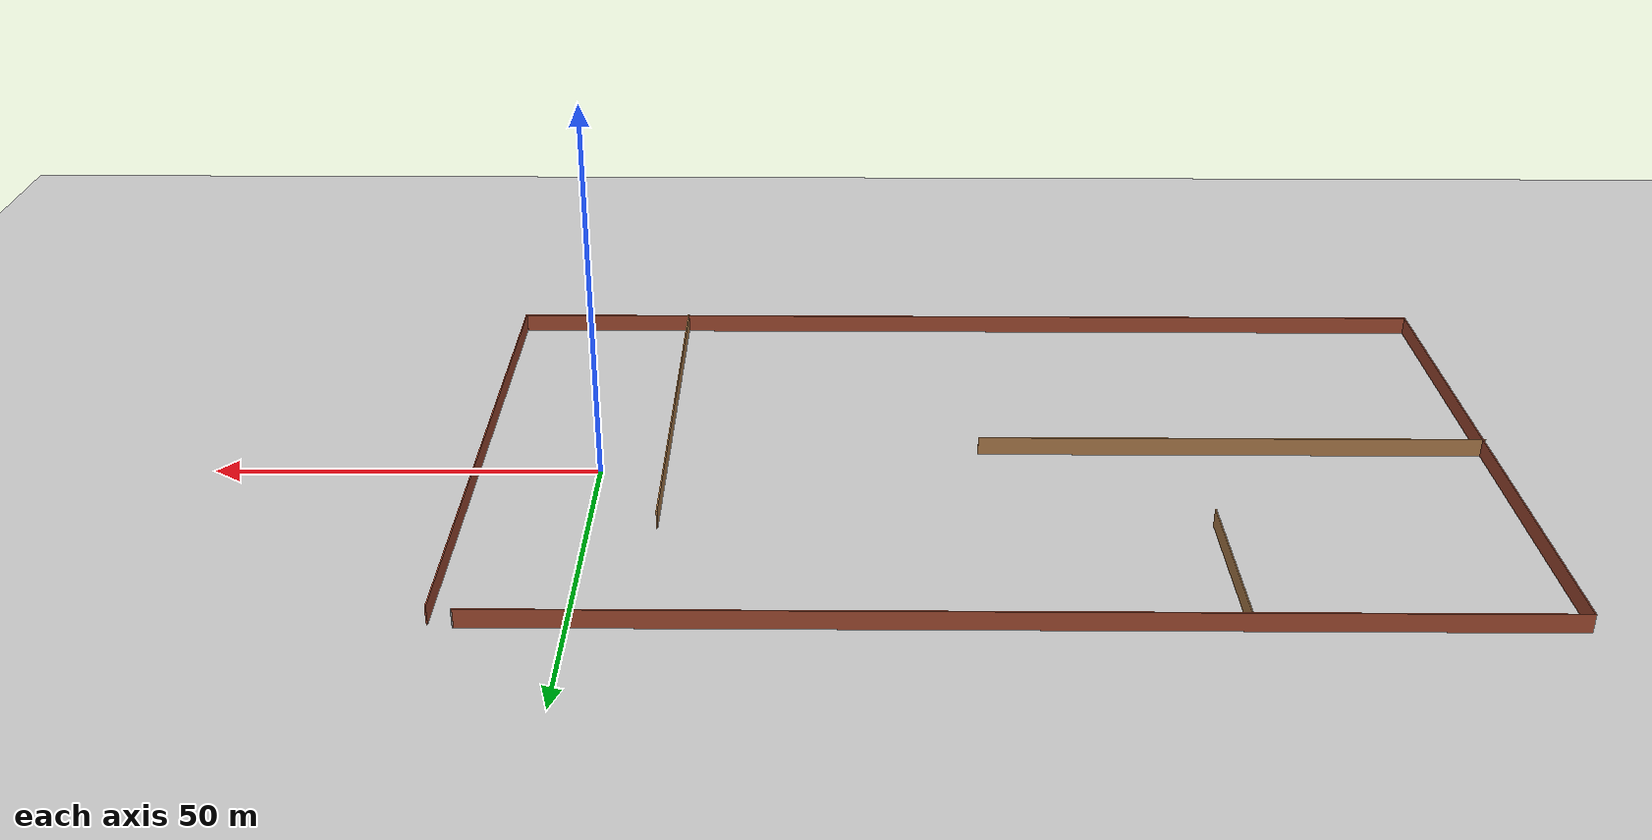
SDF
<sdf version="1.6">
 <world name="default">
  <light name="sun" type="directional">
   <pose>0 0 10 0 -0 0</pose>
   <diffuse>0.8 0.8 0.8 1</diffuse>
   <specular>0.2 0.2 0.2 1</specular>
   <attenuation>
    <range>1000</range>
    <constant>0.9</constant>
    <linear>0.01</linear>
    <quadratic>0.001</quadratic>
   </attenuation>
   <direction>-0.5 0.1 -0.9</direction>
  </light>
  <model name="ground_plane">
   <static>1</static>
   <link name="link">
    <collision name="collision">
     <geometry><plane><normal>0 0 1</normal><size>100 100</size></plane></geometry>
     <surface>
      <contact><collide_bitmask>65535</collide_bitmask></contact>
      <friction><ode><mu>100</mu><mu2>50</mu2></ode></friction>
     </surface>
    </collision>
    <visual name="visual">
     <cast_shadows>0</cast_shadows>
     <geometry><plane><normal>0 0 1</normal><size>100 100</size></plane></geometry>
     <material>
      <script><uri>file://media/materials/scripts/gazebo.material</uri><name>Gazebo/Grey</name></script>
     </material>
    </visual>
   </link>
  </model>
  <gravity>0 0 -9.8</gravity>
  <magnetic_field>6e-06 2.3e-05 -4.2e-05</magnetic_field>
  <atmosphere type="adiabatic"/>
  <physics name="default_physics" default="0" type="ode">
   <max_step_size>0.001</max_step_size>
   <real_time_factor>1</real_time_factor>
   <real_time_update_rate>1000</real_time_update_rate>
  </physics>
  <scene><ambient>0.4 0.4 0.4 1</ambient><background>0.7 0.7 0.7 1</background><shadows>1</shadows></scene>
  <audio><device>default</device></audio>
  <spherical_coordinates>
   <surface_model>EARTH_WGS84</surface_model>
   <latitude_deg>0</latitude_deg>
   <longitude_deg>0</longitude_deg>
   <elevation>0</elevation>
   <heading_deg>0</heading_deg>
  </spherical_coordinates>
  <model name="random">
   <pose>-50.1537 -4.10736 0 0 -0 0</pose>
   <link name="Wall_0">
    <collision name="Wall_0_Collision">
     <geometry><box><size>0.16 0.15 2.5</size></box></geometry>
     <pose>0 0 1.25 0 -0 0</pose>
    </collision>
    <visual name="Wall_0_Visual">
     <pose>0 0 1.25 0 -0 0</pose>
     <geometry><box><size>0.16 0.15 2.5</size></box></geometry>
     <material>
      <script><uri>file://media/materials/scripts/gazebo.material</uri><name>Gazebo/Grey</name></script>
      <ambient>1 1 1 1</ambient>
     </material>
     <meta><layer>0</layer></meta>
    </visual>
    <pose>62.9389 39.0951 0 0 -0 0</pose>
   </link>
   <link name="Wall_1">
    <collision name="Wall_1_Collision">
     <geometry><box><size>128.75 0.15 2.5</size></box></geometry>
     <pose>0 0 1.25 0 -0 0</pose>
    </collision>
    <visual name="Wall_1_Visual">
     <pose>0 0 1.25 0 -0 0</pose>
     <geometry><box><size>128.75 0.15 2.5</size></box></geometry>
     <material>
      <script><uri>file://media/materials/scripts/gazebo.material</uri><name>Gazebo/Bricks</name></script>
      <ambient>1 1 1 1</ambient>
     </material>
     <meta><layer>0</layer></meta>
    </visual>
    <pose>-1.35613 39.0951 0 0 -0 3.14159</pose>
   </link>
   <link name="Wall_11">
    <collision name="Wall_11_Collision">
     <geometry><box><size>57 0.15 2.5</size></box></geometry>
     <pose>0 0 1.25 0 -0 0</pose>
    </collision>
    <visual name="Wall_11_Visual">
     <pose>0 0 1.25 0 -0 0</pose>
     <geometry><box><size>57 0.15 2.5</size></box></geometry>
     <material>
      <script><uri>file://media/materials/scripts/gazebo.material</uri><name>Gazebo/Wood</name></script>
      <ambient>1 1 1 1</ambient>
     </material>
     <meta><layer>0</layer></meta>
    </visual>
    <pose>41.5937 -10.6701 0 0 -0 -1.5708</pose>
   </link>
   <link name="Wall_2">
    <collision name="Wall_2_Collision">
     <geometry><box><size>78 0.15 2.5</size></box></geometry>
     <pose>0 0 1.25 0 -0 0</pose>
    </collision>
    <visual name="Wall_2_Visual">
     <pose>0 0 1.25 0 -0 0</pose>
     <geometry><box><size>78 0.15 2.5</size></box></geometry>
     <material>
      <script><uri>file://media/materials/scripts/gazebo.material</uri><name>Gazebo/Bricks</name></script>
      <ambient>1 1 1 1</ambient>
     </material>
     <meta><layer>0</layer></meta>
    </visual>
    <pose>-65.6561 0.170075 0 0 -0 -1.5708</pose>
   </link>
   <link name="Wall_3">
    <collision name="Wall_3_Collision">
     <geometry><box><size>131.75 0.15 2.5</size></box></geometry>
     <pose>0 0 1.25 0 -0 0</pose>
    </collision>
    <visual name="Wall_3_Visual">
     <pose>0 0 1.25 0 -0 0</pose>
     <geometry><box><size>131.75 0.15 2.5</size></box></geometry>
     <material>
      <script><uri>file://media/materials/scripts/gazebo.material</uri><name>Gazebo/Bricks</name></script>
      <ambient>1 1 1 1</ambient>
     </material>
     <meta><layer>0</layer></meta>
    </visual>
    <pose>0.143872 -38.7549 0 0 -0 0</pose>
   </link>
   <link name="Wall_4">
    <collision name="Wall_4_Collision">
     <geometry><box><size>77.5 0.15 2.5</size></box></geometry>
     <pose>0 0 1.25 0 -0 0</pose>
    </collision>
    <visual name="Wall_4_Visual">
     <pose>0 0 1.25 0 -0 0</pose>
     <geometry><box><size>77.5 0.15 2.5</size></box></geometry>
     <material>
      <script><uri>file://media/materials/scripts/gazebo.material</uri><name>Gazebo/Bricks</name></script>
      <ambient>1 1 1 1</ambient>
     </material>
     <meta><layer>0</layer></meta>
    </visual>
    <pose>65.9439 -0.079925 0 0 -0 1.5708</pose>
   </link>
   <link name="Wall_6">
    <collision name="Wall_6_Collision">
     <geometry><box><size>22.25 0.15 2.5</size></box></geometry>
     <pose>0 0 1.25 0 -0 0</pose>
    </collision>
    <visual name="Wall_6_Visual">
     <pose>0 0 1.25 0 -0 0</pose>
     <geometry><box><size>22.25 0.15 2.5</size></box></geometry>
     <material>
      <script><uri>file://media/materials/scripts/gazebo.material</uri><name>Gazebo/Wood</name></script>
      <ambient>1 1 1 1</ambient>
     </material>
     <meta><layer>0</layer></meta>
    </visual>
    <pose>-27.2387 27.7588 0 0 -0 1.5708</pose>
   </link>
   <link name="Wall_9">
    <collision name="Wall_9_Collision">
     <geometry><box><size>66.75 0.15 2.5</size></box></geometry>
     <pose>0 0 1.25 0 -0 0</pose>
    </collision>
    <visual name="Wall_9_Visual">
     <pose>0 0 1.25 0 -0 0</pose>
     <geometry><box><size>66.75 0.15 2.5</size></box></geometry>
     <material>
      <script><uri>file://media/materials/scripts/gazebo.material</uri><name>Gazebo/Wood</name></script>
      <ambient>1 1 1 1</ambient>
     </material>
     <meta><layer>0</layer></meta>
    </visual>
    <pose>-32.6439 -1.28383 0 0 -0 0</pose>
   </link>
   <static>1</static>
  </model>
 </world>
</sdf>
